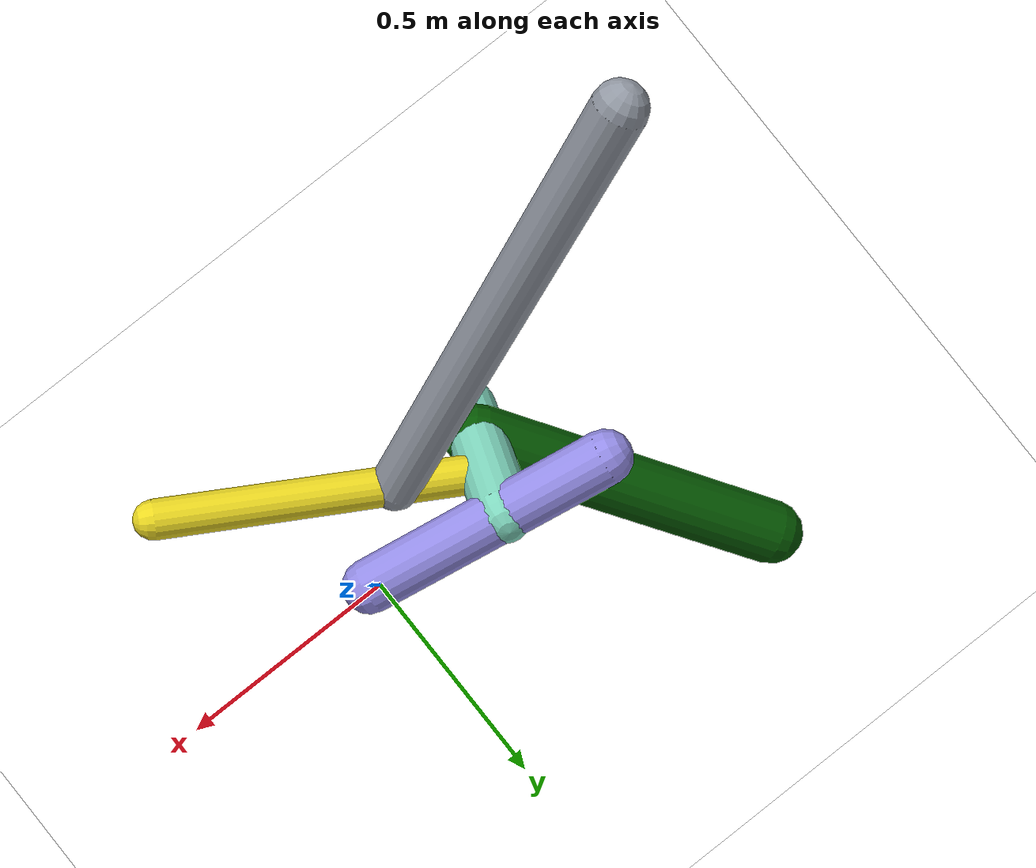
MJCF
<mujoco model="morphology">
  <option timestep="0.01"/>
  <default>
    <default class="/"/>
    <default class="0/"/>
    <default class="0/1/"/>
    <default class="0/1/2/"/>
    <default class="0/1/2/3/"/>
    <default class="0/1/4/"/>
  </default>
  <asset>
    <texture name="texplane" type="2d" builtin="checker" rgb1="0.10000000000000001 0.20000000000000001 0.29999999999999999" rgb2="0.20000000000000001 0.29999999999999999 0.40000000000000002" width="300" height="300"/>
    <material name="MatPlane" class="/" texture="texplane" texrepeat="20 20" specular="1" shininess="1" reflectance="0.5"/>
  </asset>
  <worldbody>
    <light name="//unnamed_light_0" class="/" directional="true" pos="0 0 1.5" dir="0 0 -1.3" cutoff="100" exponent="1" diffuse="1 1 1" specular="0.10000000000000001 0.10000000000000001 0.10000000000000001"/>
    <geom name="ground" class="/" type="plane" size="15 15 0.5" material="MatPlane" rgba="1 1 1 1"/>
    <site name="body" class="/" size="9.9999999999999995e-07 9.9999999999999995e-07 9.9999999999999995e-07" pos="0 0 0.40882143974304197"/>
    <body pos="0 0 0.40882143974304197" name="0/">
      <freejoint name="0/"/>
      <geom name="0/geom" class="0/" type="capsule" contype="1" conaffinity="1" condim="3" size="0.055467543770132383" rgba="0.56854802865155962 0.54000786940273393 0.88576939232773988 1" friction="0.59999999999999998 0.10000000000000001 0.10000000000000001" fromto="0 0 0 -0.50667979829953269 0.088428710883771133 0.11277289373937593"/>
      <site name="0/end0" class="0/" size="0.0050000000000000001" pos="-0.50667979829953269 0.088428710883771133 0.11277289373937593"/>
      <site name="0/attach1" class="0/" size="9.9999999999999995e-07 9.9999999999999995e-07 9.9999999999999995e-07" pos="-0.29072618785692861 0.050739228401490789 0.064707599553951847"/>
      <body pos="-0.29072618785692861 0.050739228401490789 0.064707599553951847" name="0/1/">
        <joint name="0/1/joint/" class="0/" type="hinge" axis="0 0 1" limited="true" range="-44.294831049937649 44.294831049937649"/>
        <geom name="0/1/geom" class="0/1/" type="capsule" contype="1" conaffinity="1" condim="3" size="0.059791913634699628" rgba="0.4868584579061398 0.82366187684117986 0.72821127516162332 1" friction="0.59999999999999998 0.10000000000000001 0.10000000000000001" fromto="0 0 0 -0.08132823479888307 -0.21919164657875745 -0.23462381479892735"/>
        <site name="0/1/end1" class="0/1/" size="0.0050000000000000001" pos="-0.08132823479888307 -0.21919164657875745 -0.23462381479892735"/>
        <site name="0/1/attach2" class="0/1/" size="9.9999999999999995e-07 9.9999999999999995e-07 9.9999999999999995e-07" pos="-0.030657084105026395 -0.082625385401534315 -0.08844261825084683"/>
        <body pos="-0.030657084105026395 -0.082625385401534315 -0.08844261825084683" name="0/1/2/">
          <joint name="0/1/2/joint/" class="0/1/" type="hinge" axis="0.96938635251318184 -0.16762228351385622 -0.17942371535220591" limited="true" range="-30.468274469138663 30.468274469138663"/>
          <geom name="0/1/2/geom" class="0/1/2/" type="capsule" contype="1" conaffinity="1" condim="3" size="0.039861924587966689" rgba="0.91019078832549249 0.83608954818783254 0.12834185204362381 1" friction="0.59999999999999998 0.10000000000000001 0.10000000000000001" fromto="0 0 0 0.56211332344775933 -0.31986864222161099 0.12866618216333281"/>
          <site name="0/1/2/end2" class="0/1/2/" size="0.0050000000000000001" pos="0.56211332344775933 -0.31986864222161099 0.12866618216333281"/>
          <site name="0/1/2/attach3" class="0/1/2/" size="9.9999999999999995e-07 9.9999999999999995e-07 9.9999999999999995e-07" pos="0.16031543296622974 -0.091226942559463023 0.036695758383929314"/>
          <body pos="0.16031543296622974 -0.091226942559463023 0.036695758383929314" name="0/1/2/3/">
            <joint name="0/1/2/3/joint/" class="0/1/2/" type="hinge" axis="0.52284376723751302 0.7908457837978391 -0.31811529562419139" limited="true" range="-51.596506368188429 51.596506368188429"/>
            <geom name="0/1/2/3/geom" class="0/1/2/3/" type="capsule" contype="1" conaffinity="1" condim="3" size="0.050770396628301587" rgba="0.56239655312245518 0.58660940527914129 0.6283665397139091 1" friction="0.59999999999999998 0.10000000000000001 0.10000000000000001" fromto="0 0 0 -0.67487292469185323 -0.21698119037854524 0.68226143105127113"/>
            <site name="0/1/2/3/end3" class="0/1/2/3/" size="0.0050000000000000001" pos="-0.67487292469185323 -0.21698119037854524 0.68226143105127113"/>
          </body>
        </body>
        <site name="0/1/attach4" class="0/1/" size="9.9999999999999995e-07 9.9999999999999995e-07 9.9999999999999995e-07" pos="-0.057811635232483741 -0.15581092531216045 -0.16678077953556777"/>
        <body pos="-0.057811635232483741 -0.15581092531216045 -0.16678077953556777" name="0/1/4/">
          <joint name="0/1/4/joint/" class="0/1/" type="hinge" axis="0.96938635251318184 -0.16762228351385622 -0.17942371535220591" limited="true" range="-43.531707524568596 43.531707524568596"/>
          <geom name="0/1/4/geom" class="0/1/4/" type="capsule" contype="1" conaffinity="1" condim="3" size="0.067454125311588745" rgba="0.018647463344961035 0.33536234677104981 0.0078089723656111776 1" friction="0.59999999999999998 0.10000000000000001 0.10000000000000001" fromto="0 0 0 -0.36691931420974044 0.52738169337508012 -0.20674825310266587"/>
          <site name="0/1/4/end4" class="0/1/4/" size="0.0050000000000000001" pos="-0.36691931420974044 0.52738169337508012 -0.20674825310266587"/>
        </body>
      </body>
      <camera name="0/iso" class="0/" mode="trackcom" pos="-2.2999999999999998 -2.2999999999999998 1" xyaxes="0.45000000000000001 -0.45000000000000001 0 0.29999999999999999 0.14999999999999999 0.93999999999999995"/>
    </body>
  </worldbody>
  <actuator>
    <motor name="0/1/motor" class="0/1/" ctrllimited="true" ctrlrange="-1 1" gear="71" joint="0/1/joint/"/>
    <motor name="0/1/2/motor" class="0/1/2/" ctrllimited="true" ctrlrange="-1 1" gear="99" joint="0/1/2/joint/"/>
    <motor name="0/1/2/3/motor" class="0/1/2/3/" ctrllimited="true" ctrlrange="-1 1" gear="73" joint="0/1/2/3/joint/"/>
    <motor name="0/1/4/motor" class="0/1/4/" ctrllimited="true" ctrlrange="-1 1" gear="86" joint="0/1/4/joint/"/>
  </actuator>
  <sensor>
    <subtreelinvel name="velocity" body="0/"/>
  </sensor>
</mujoco>
